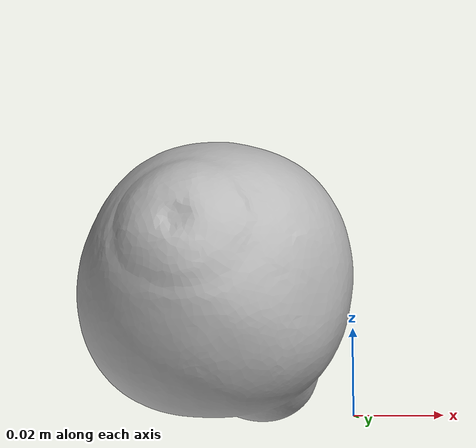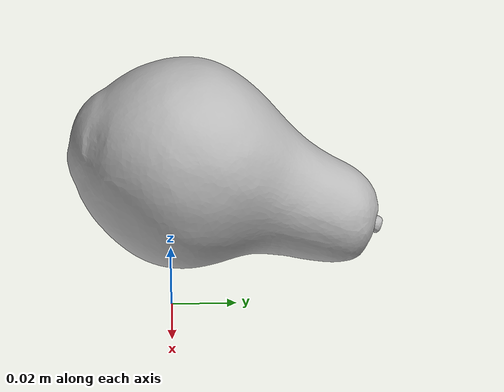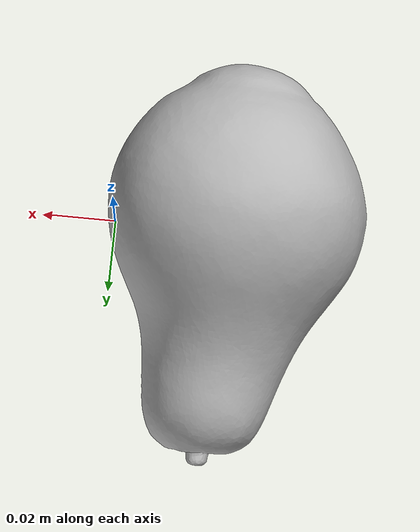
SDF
<?xml version='1.0'?>
<sdf version="1.4">
  <model name="pear">
    <static>false</static>
    <link name="link">
      <inertial>
        <pose>-0.032542733786051076 0.011075535445138573 0.030040521498604082 2.04054080247033 -0.7423506892704661 2.744636464079527</pose>
        <mass>0.000192218040717369</mass>
        <inertia>
          <ixx>1.307113540605602e-07</ixx>
          <ixy>-4.31835747444182e-24</ixy>
          <ixz>6.349930946090901e-24</ixz>
          <iyy>1.280852023276796e-07</iyy>
          <iyz>8.124516480323889e-24</iyz>
          <izz>7.720902655923678e-08</izz>
        </inertia>
      </inertial>
      <collision name="collision">
        <geometry>
          <mesh>
            <!-- Use a downsampled mesh for collisions -->
            <uri>model://016_pear/google_16k/016_pear.obj</uri>
            </mesh>
        </geometry>
        <surface>
          <friction>
            <ode>
              <mu>0.9</mu>
              <mu2>0.9</mu2>
            </ode>
          </friction>
          <contact>
            <ode>
              <kp>1000000000000.0</kp>
              <kd>1</kd>
              <min_depth>0.0001</min_depth>
              <max_vel>0.01</max_vel>
            </ode>
          </contact>
          <bounce>
            <restitution_coefficient>0.1</restitution_coefficient>
            <threshold>1000.0</threshold>
          </bounce>
        </surface>
      </collision>
      <visual name="visual">
        <geometry>
          <mesh>
            <uri>model://016_pear/google_16k/016_pear.dae</uri>
            </mesh>
        </geometry>
      </visual>
    </link>
  </model>
</sdf>
